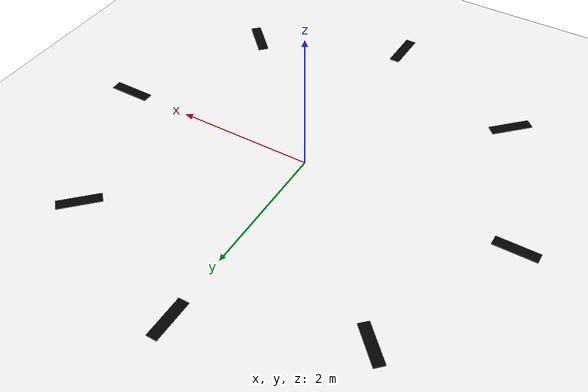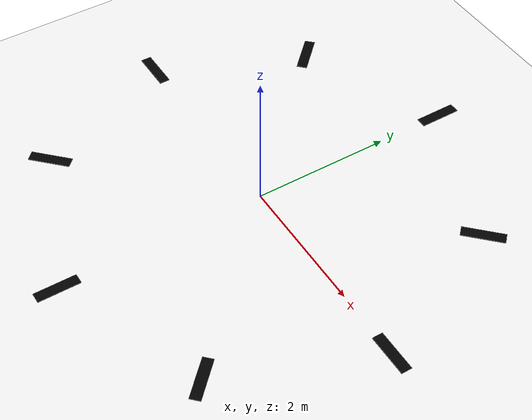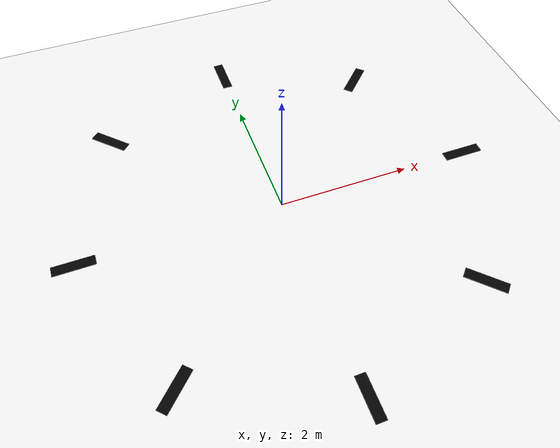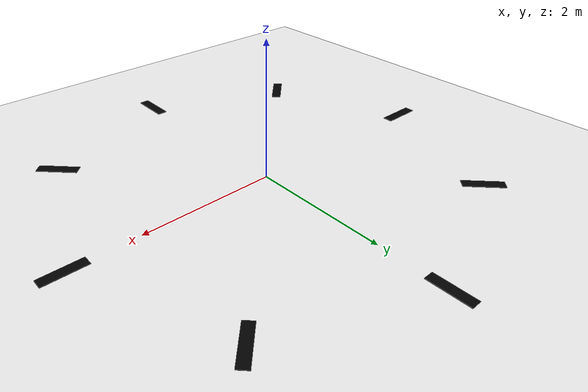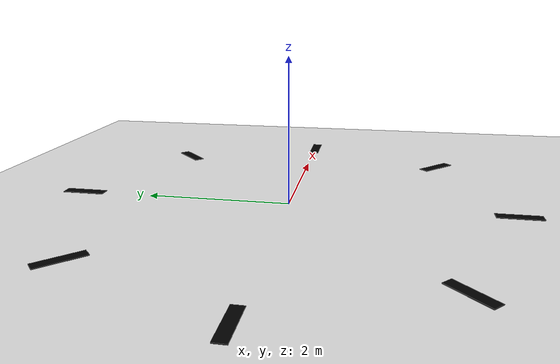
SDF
<?xml version="1.0" ?>
<sdf version="1.8">

  <world name="line_following_world">

    <light name="sun" type="directional">
      <pose>0 0 10 0 0 0</pose>
      <diffuse>1 1 1 1</diffuse>
      <specular>0.1 0.1 0.1 1</specular>
      <direction>-0.5 0.1 -1</direction>
    </light>

    <model name="ground">
      <static>true</static>
      <link name="link">
        <collision name="collision">
          <geometry>
            <plane>
              <normal>0 0 1</normal>
              <size>50 50</size>
            </plane>
          </geometry>
        </collision>
        <visual name="visual">
          <geometry>
            <plane>
              <normal>0 0 1</normal>
              <size>50 50</size>
            </plane>
          </geometry>
          <material>
            <ambient>0.9 0.9 0.9 1</ambient>
            <diffuse>0.9 0.9 0.9 1</diffuse>
          </material>
        </visual>
      </link>
    </model>

    <model name="circular_line">
      <static>true</static>

      <!-- Segment 1 -->
      <link name="seg_1">
        <pose>3 0 0.01 0 0 0</pose>
        <visual name="visual">
          <geometry>
            <box>
              <size>0.6 0.15 0.01</size>
            </box>
          </geometry>
          <material>
            <ambient>0 0 0 1</ambient>
            <diffuse>0 0 0 1</diffuse>
          </material>
        </visual>
      </link>

      <!-- Segment 2 -->
      <link name="seg_2">
        <pose>2.12 2.12 0.01 0 0 0.785</pose>
        <visual name="visual">
          <geometry>
            <box>
              <size>0.6 0.15 0.01</size>
            </box>
          </geometry>
          <material>
            <ambient>0 0 0 1</ambient>
            <diffuse>0 0 0 1</diffuse>
          </material>
        </visual>
      </link>

      <!-- Segment 3 -->
      <link name="seg_3">
        <pose>0 3 0.01 0 0 1.57</pose>
        <visual name="visual">
          <geometry>
            <box>
              <size>0.6 0.15 0.01</size>
            </box>
          </geometry>
          <material>
            <ambient>0 0 0 1</ambient>
            <diffuse>0 0 0 1</diffuse>
          </material>
        </visual>
      </link>

      <!-- Segment 4 -->
      <link name="seg_4">
        <pose>-2.12 2.12 0.01 0 0 2.355</pose>
        <visual name="visual">
          <geometry>
            <box>
              <size>0.6 0.15 0.01</size>
            </box>
          </geometry>
          <material>
            <ambient>0 0 0 1</ambient>
            <diffuse>0 0 0 1</diffuse>
          </material>
        </visual>
      </link>

      <!-- Segment 5 -->
      <link name="seg_5">
        <pose>-3 0 0.01 0 0 0</pose>
        <visual name="visual">
          <geometry>
            <box>
              <size>0.6 0.15 0.01</size>
            </box>
          </geometry>
          <material>
            <ambient>0 0 0 1</ambient>
            <diffuse>0 0 0 1</diffuse>
          </material>
        </visual>
      </link>

      <!-- Segment 6 -->
      <link name="seg_6">
        <pose>-2.12 -2.12 0.01 0 0 0.785</pose>
        <visual name="visual">
          <geometry>
            <box>
              <size>0.6 0.15 0.01</size>
            </box>
          </geometry>
          <material>
            <ambient>0 0 0 1</ambient>
            <diffuse>0 0 0 1</diffuse>
          </material>
        </visual>
      </link>

      <!-- Segment 7 -->
      <link name="seg_7">
        <pose>0 -3 0.01 0 0 1.57</pose>
        <visual name="visual">
          <geometry>
            <box>
              <size>0.6 0.15 0.01</size>
            </box>
          </geometry>
          <material>
            <ambient>0 0 0 1</ambient>
            <diffuse>0 0 0 1</diffuse>
          </material>
        </visual>
      </link>

      <!-- Segment 8 -->
      <link name="seg_8">
        <pose>2.12 -2.12 0.01 0 0 2.355</pose>
        <visual name="visual">
          <geometry>
            <box>
              <size>0.6 0.15 0.01</size>
            </box>
          </geometry>
          <material>
            <ambient>0 0 0 1</ambient>
            <diffuse>0 0 0 1</diffuse>
          </material>
        </visual>
      </link>

    </model>

  </world>
</sdf>
